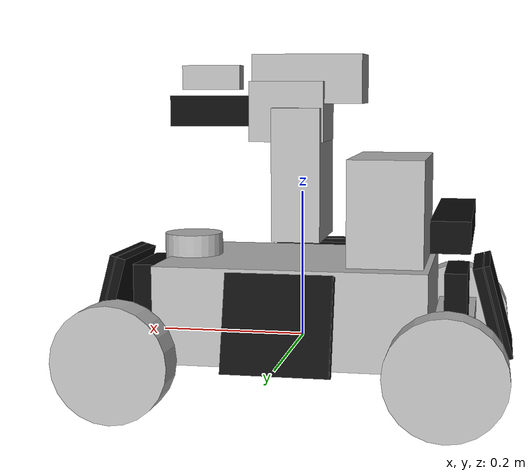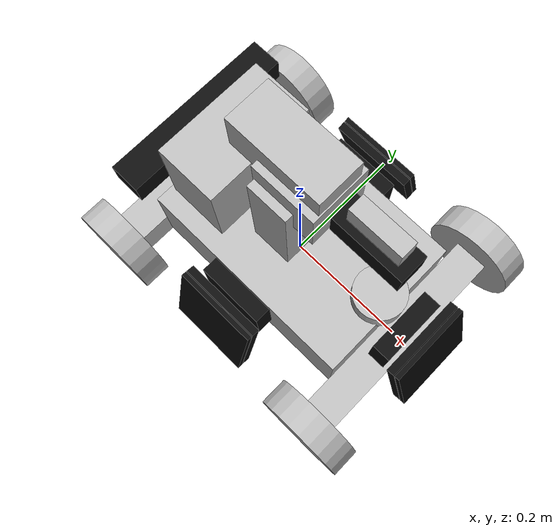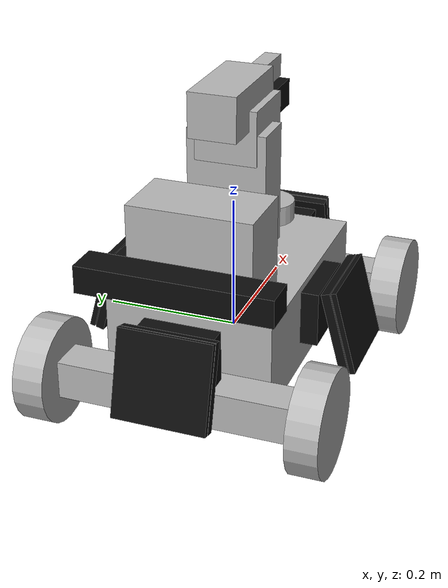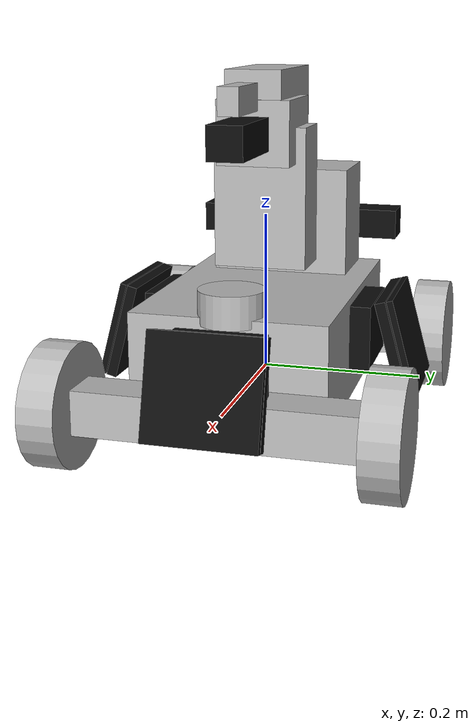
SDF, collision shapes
<?xml version="1.0" ?>
<!-- |    This document was autogenerated by xmacro4sdf from /home/jlcv/heavy/src/heavy_lob_shot_manager/resource/xmacro/simulation_robot.sdf.xmacro  | -->
<!-- |    EDITING THIS FILE BY HAND IS NOT RECOMMENDED                                                                                        | -->
<sdf version="1.7">
	<!--include defination-->
	<!--property defination-->
	<!-- 底盘距离水平地面的高度 -->
	<!-- gimbal_yaw 相对于底盘的 z 轴安装偏移 -->
	<!-- gimbal_pitch 相对于 gimbal_yaw 的高度差 -->
	<!--simulation_robot model-->
	<model name="simulation_robot">
		<pose>0 0 0 0 0 0</pose>
		<self_collide>false</self_collide>
		<link name="base_footprint"/>
		<joint name="base_to_chassis" type="fixed">
			<pose>0 0 0.063 0 0 0</pose>
			<parent>base_footprint</parent>
			<child>chassis</child>
		</joint>
		<!--chassis-->
		<link name="chassis">
			<inertial>
				<pose>0 0 0.055 0 0 0</pose>
				<mass>15.0</mass>
				<inertia>
					<ixx>0.093125</ixx>
					<ixy>0</ixy>
					<ixz>0</ixz>
					<iyy>0.18312499999999998</iyy>
					<iyz>0</iyz>
					<izz>0.23399999999999999</izz>
				</inertia>
			</inertial>
			<visual name="chassis_visual">
				<geometry>
					<mesh>
						<uri>model://rmua19_standard_robot/meshes/chassis_base.dae</uri>
					</mesh>
				</geometry>
			</visual>
			<collision name="chassis_base_collision">
				<pose>0 0 0.045 0 0 0</pose>
				<geometry>
					<box>
						<size>0.36 0.24 0.13</size>
					</box>
				</geometry>
			</collision>
			<collision name="chassis_projectile_container_collision">
				<pose>-0.122 0 0.177 0 0 0</pose>
				<geometry>
					<box>
						<size>0.1 0.18 0.146</size>
					</box>
				</geometry>
			</collision>
			<collision name="chassis_fornt_wheel_holder_collision">
				<pose>0.208 0 0 0 0 0</pose>
				<geometry>
					<box>
						<size>0.055 0.367 0.055</size>
					</box>
				</geometry>
			</collision>
			<collision name="chassis_rear_wheel_holder_collision">
				<pose>-0.208 0 0 0 0 0</pose>
				<geometry>
					<box>
						<size>0.055 0.367 0.055</size>
					</box>
				</geometry>
			</collision>
			<sensor name="chassis_imu" type="imu">
				<always_on>1</always_on>
				<update_rate>200</update_rate>
			</sensor>
		</link>
		<!--front_left wheel link and joint-->
		<joint name="front_left_wheel_joint" type="revolute">
			<pose relative_to="chassis">0.207 0.194 0 0 0 0</pose>
			<parent>chassis</parent>
			<child>front_left_wheel</child>
			<axis>
				<xyz>0 1 0</xyz>
				<limit>
					<lower>-1.79769e+308</lower>
					<upper>1.79769e+308</upper>
					<effort>1e+10</effort>
					<velocity>1e+10</velocity>
				</limit>
			</axis>
		</joint>
		<link name="front_left_wheel">
			<pose relative_to="front_left_wheel_joint">0 0 0 0 0 0</pose>
			<inertial>
				<pose>0 0 0 1.5707 0 0</pose>
				<mass>0.4</mass>
				<inertia>
					<ixx>0.0006426653333333334</ixx>
					<ixy>0</ixy>
					<ixz>0</ixz>
					<iyy>0.0006426653333333334</iyy>
					<iyz>0</iyz>
					<izz>0.0011491280000000001</izz>
				</inertia>
			</inertial>
			<visual name="front_left_wheel_visual">
				<geometry>
					<mesh>
						<uri>model://rmua19_standard_robot/meshes/wheel_left.dae</uri>
					</mesh>
				</geometry>
			</visual>
			<collision name="front_left_wheel_collision">
				<pose>0 0 0 1.5707 0 0</pose>
				<geometry>
					<cylinder>
						<radius>0.0758</radius>
						<length>0.0452</length>
					</cylinder>
				</geometry>
				<surface>
					<friction>
						<ode>
							<mu>0.2</mu>
							<mu2>0.2</mu2>
						</ode>
					</friction>
				</surface>
			</collision>
		</link>
		<!--front_right wheel link and joint-->
		<joint name="front_right_wheel_joint" type="revolute">
			<pose relative_to="chassis">0.207 -0.194 0 0 0 0</pose>
			<parent>chassis</parent>
			<child>front_right_wheel</child>
			<axis>
				<xyz>0 1 0</xyz>
				<limit>
					<lower>-1.79769e+308</lower>
					<upper>1.79769e+308</upper>
					<effort>1e+10</effort>
					<velocity>1e+10</velocity>
				</limit>
			</axis>
		</joint>
		<link name="front_right_wheel">
			<pose relative_to="front_right_wheel_joint">0 0 0 0 0 0</pose>
			<inertial>
				<pose>0 0 0 1.5707 0 0</pose>
				<mass>0.4</mass>
				<inertia>
					<ixx>0.0006426653333333334</ixx>
					<ixy>0</ixy>
					<ixz>0</ixz>
					<iyy>0.0006426653333333334</iyy>
					<iyz>0</iyz>
					<izz>0.0011491280000000001</izz>
				</inertia>
			</inertial>
			<visual name="front_right_wheel_visual">
				<geometry>
					<mesh>
						<uri>model://rmua19_standard_robot/meshes/wheel_right.dae</uri>
					</mesh>
				</geometry>
			</visual>
			<collision name="front_right_wheel_collision">
				<pose>0 0 0 1.5707 0 0</pose>
				<geometry>
					<cylinder>
						<radius>0.0758</radius>
						<length>0.0452</length>
					</cylinder>
				</geometry>
				<surface>
					<friction>
						<ode>
							<mu>0.2</mu>
							<mu2>0.2</mu2>
						</ode>
					</friction>
				</surface>
			</collision>
		</link>
		<!--rear_left wheel link and joint-->
		<joint name="rear_left_wheel_joint" type="revolute">
			<pose relative_to="chassis">-0.207 0.194 0 0 0 0</pose>
			<parent>chassis</parent>
			<child>rear_left_wheel</child>
			<axis>
				<xyz>0 1 0</xyz>
				<limit>
					<lower>-1.79769e+308</lower>
					<upper>1.79769e+308</upper>
					<effort>1e+10</effort>
					<velocity>1e+10</velocity>
				</limit>
			</axis>
		</joint>
		<link name="rear_left_wheel">
			<pose relative_to="rear_left_wheel_joint">0 0 0 0 0 0</pose>
			<inertial>
				<pose>0 0 0 1.5707 0 0</pose>
				<mass>0.4</mass>
				<inertia>
					<ixx>0.0006426653333333334</ixx>
					<ixy>0</ixy>
					<ixz>0</ixz>
					<iyy>0.0006426653333333334</iyy>
					<iyz>0</iyz>
					<izz>0.0011491280000000001</izz>
				</inertia>
			</inertial>
			<visual name="rear_left_wheel_visual">
				<geometry>
					<mesh>
						<uri>model://rmua19_standard_robot/meshes/wheel_right.dae</uri>
					</mesh>
				</geometry>
			</visual>
			<collision name="rear_left_wheel_collision">
				<pose>0 0 0 1.5707 0 0</pose>
				<geometry>
					<cylinder>
						<radius>0.0758</radius>
						<length>0.0452</length>
					</cylinder>
				</geometry>
				<surface>
					<friction>
						<ode>
							<mu>0.2</mu>
							<mu2>0.2</mu2>
						</ode>
					</friction>
				</surface>
			</collision>
		</link>
		<!--rear_right wheel link and joint-->
		<joint name="rear_right_wheel_joint" type="revolute">
			<pose relative_to="chassis">-0.207 -0.194 0 0 0 0</pose>
			<parent>chassis</parent>
			<child>rear_right_wheel</child>
			<axis>
				<xyz>0 1 0</xyz>
				<limit>
					<lower>-1.79769e+308</lower>
					<upper>1.79769e+308</upper>
					<effort>1e+10</effort>
					<velocity>1e+10</velocity>
				</limit>
			</axis>
		</joint>
		<link name="rear_right_wheel">
			<pose relative_to="rear_right_wheel_joint">0 0 0 0 0 0</pose>
			<inertial>
				<pose>0 0 0 1.5707 0 0</pose>
				<mass>0.4</mass>
				<inertia>
					<ixx>0.0006426653333333334</ixx>
					<ixy>0</ixy>
					<ixz>0</ixz>
					<iyy>0.0006426653333333334</iyy>
					<iyz>0</iyz>
					<izz>0.0011491280000000001</izz>
				</inertia>
			</inertial>
			<visual name="rear_right_wheel_visual">
				<geometry>
					<mesh>
						<uri>model://rmua19_standard_robot/meshes/wheel_left.dae</uri>
					</mesh>
				</geometry>
			</visual>
			<collision name="rear_right_wheel_collision">
				<pose>0 0 0 1.5707 0 0</pose>
				<geometry>
					<cylinder>
						<radius>0.0758</radius>
						<length>0.0452</length>
					</cylinder>
				</geometry>
				<surface>
					<friction>
						<ode>
							<mu>0.2</mu>
							<mu2>0.2</mu2>
						</ode>
					</friction>
				</surface>
			</collision>
		</link>
		<joint name="gimbal_yaw_odom_joint" type="revolute">
			<pose relative_to="chassis">0 0 0.1376 0 0 0</pose>
			<parent>chassis</parent>
			<child>gimbal_yaw_odom</child>
			<axis>
				<xyz>0 0 1</xyz>
				<limit>
					<effort>100</effort>
					<velocity>50</velocity>
					<lower>-1.79769e+308</lower>
					<upper>1.79769e+308</upper>
				</limit>
			</axis>
		</joint>
		<link name="gimbal_yaw_odom">
			<pose relative_to="gimbal_yaw_odom_joint">0 0 0 0 0 0</pose>
		</link>
		<joint name="gimbal_pitch_odom_joint" type="fixed">
			<pose relative_to="gimbal_yaw_odom">0 0 0.172 0 0 0</pose>
			<parent>gimbal_yaw_odom</parent>
			<child>gimbal_pitch_odom</child>
			<axis>
				<xyz>0 1 0</xyz>
				<limit>
					<effort>100</effort>
					<velocity>50</velocity>
					<lower>-0.785</lower>
					<upper>0.5652</upper>
				</limit>
			</axis>
		</joint>
		<link name="gimbal_pitch_odom">
			<pose relative_to="gimbal_pitch_odom_joint">0 0 0 0 0 0</pose>
		</link>
		<!--gimbal yaw module-->
		<joint name="gimbal_yaw_joint" type="revolute">
			<pose relative_to="gimbal_pitch_odom">0 0 -0.172 0 0 0</pose>
			<parent>gimbal_pitch_odom</parent>
			<child>gimbal_yaw</child>
			<axis>
				<xyz>0 0 1</xyz>
				<limit>
					<effort>100</effort>
					<velocity>50</velocity>
					<lower>-1.79769e+308</lower>
					<upper>1.79769e+308</upper>
				</limit>
			</axis>
		</joint>
		<link name="gimbal_yaw">
			<pose relative_to="gimbal_yaw_joint">0 0 0 0 0 0</pose>
			<inertial>
				<pose>0 0 0.06 0 0 0</pose>
				<mass>1.0</mass>
				<inertia>
					<ixx>0.003033333333333334</ixx>
					<ixy>0</ixy>
					<ixz>0</ixz>
					<iyy>0.003033333333333334</iyy>
					<iyz>0</iyz>
					<izz>0.0012500000000000002</izz>
				</inertia>
			</inertial>
			<visual name="visual">
				<geometry>
					<mesh>
						<uri>model://rmua19_standard_robot/meshes/gimbal_yaw.dae</uri>
					</mesh>
				</geometry>
			</visual>
			<collision name="collision">
				<pose>0 0 0.0885 0 0 0</pose>
				<geometry>
					<box>
						<size>0.065 0.117 0.177</size>
					</box>
				</geometry>
			</collision>
		</link>
		<!--gimbal pitch module-->
		<joint name="gimbal_pitch_joint" type="revolute">
			<pose relative_to="gimbal_yaw">0 0 0.172 0 0 0</pose>
			<parent>gimbal_yaw</parent>
			<child>gimbal_pitch</child>
			<axis>
				<xyz>0 1 0</xyz>
				<limit>
					<effort>100</effort>
					<lower>-1.60</lower>
					<upper>0.20</upper>
					<velocity>50</velocity>
				</limit>
			</axis>
		</joint>
		<link name="gimbal_pitch">
			<pose relative_to="gimbal_pitch_joint">0 0 0 0 0 0</pose>
			<inertial>
				<pose>0.02 0 0 0 0 0</pose>
				<mass>0.5</mass>
				<inertia>
					<ixx>0.0007541666666666668</ixx>
					<ixy>0</ixy>
					<ixz>0</ixz>
					<iyy>0.0030208333333333337</iyy>
					<iyz>0</iyz>
					<izz>0.0029416666666666666</izz>
				</inertia>
			</inertial>
			<visual name="visual">
				<geometry>
					<mesh>
						<uri>model://rmua19_standard_robot/meshes/gimbal_pitch.dae</uri>
					</mesh>
				</geometry>
			</visual>
			<collision name="collision_main">
				<pose>0.015 0 0 0 0 0</pose>
				<geometry>
					<box>
						<size>0.1 0.0915 0.08</size>
					</box>
				</geometry>
			</collision>
			<collision name="collision_box">
				<pose>-0.011 0 0.043 0 0 0</pose>
				<geometry>
					<box>
						<size>0.14801 0.07 0.065</size>
					</box>
				</geometry>
			</collision>
			<sensor name="gimbal_imu" type="imu">
				<always_on>1</always_on>
				<update_rate>200</update_rate>
			</sensor>
		</link>
		<!--for referee system -->
		<!--front armors -->
		<joint name="armor_support_frame_0_joint" type="fixed">
			<pose relative_to="chassis">0.197 0 0.061 0 0 0</pose>
			<parent>chassis</parent>
			<child>armor_support_frame_0</child>
		</joint>
		<link name="armor_support_frame_0">
			<pose relative_to="armor_support_frame_0_joint">0 0 0 0 0 0</pose>
			<inertial>
				<pose>0.035 0 0 0 0 0</pose>
				<mass>0.1</mass>
				<inertia>
					<ixx>0.00023080833333333334</ixx>
					<ixy>0</ixy>
					<ixz>0</ixz>
					<iyy>0.00017014166666666668</iyy>
					<iyz>0</iyz>
					<izz>0.00014468333333333334</izz>
				</inertia>
			</inertial>
			<visual name="visual">
				<geometry>
					<mesh>
						<uri>model://rm21_armor_module/meshes/armor_support_frame.stl</uri>
					</mesh>
				</geometry>
				<material>
					<ambient>0.1 0.1 0.1</ambient>
					<diffuse>0.05 0.05 0.05</diffuse>
					<specular>0.6 0.6 0.6</specular>
				</material>
			</visual>
			<collision name="collision">
				<pose>0.015 0 0 0 0 0</pose>
				<geometry>
					<box>
						<size>0.03 0.11 0.08</size>
					</box>
				</geometry>
			</collision>
		</link>
		<joint name="armor_0_joint" type="fixed">
			<pose relative_to="armor_support_frame_0">0.075 0 -0.071 0 -0.262 0</pose>
			<parent>armor_support_frame_0</parent>
			<child>armor_0</child>
		</joint>
		<link name="armor_0">
			<pose relative_to="armor_0_joint">0 0 0 0 0 0</pose>
			<inertial>
				<pose>0 0 0.0625 0 0 0</pose>
				<mass>0.1</mass>
				<inertia>
					<ixx>0.0003065083333333333</ixx>
					<ixy>0</ixy>
					<ixz>0</ixz>
					<iyy>0.0001421774166666667</iyy>
					<iyz>0</iyz>
					<izz>0.0001670190833333333</izz>
				</inertia>
			</inertial>
			<visual name="visual">
				<geometry>
					<mesh>
						<uri>model://rm21_armor_module/meshes/small_armor.dae</uri>
					</mesh>
				</geometry>
				<material>
					<ambient>0.1 0.1 0.1</ambient>
					<diffuse>0.05 0.05 0.05</diffuse>
					<specular>0.6 0.6 0.6</specular>
				</material>
			</visual>
			<visual name="target_visual">
				<geometry>
					<mesh>
						<uri>model://rm21_armor_module/meshes/small_armor_target.dae</uri>
					</mesh>
				</geometry>
				<material>
					<ambient>0.1 0.1 0.1</ambient>
					<diffuse>0.05 0.05 0.05</diffuse>
					<specular>0.6 0.6 0.6</specular>
				</material>
			</visual>
			<visual name="light_bar_visual">
				<geometry>
					<mesh>
						<uri>model://rm21_armor_module/meshes/small_armor_light_bar.dae</uri>
					</mesh>
				</geometry>
				<material>
					<ambient>1.0 1.0 1.0</ambient>
					<diffuse>1.0 1.0 1.0</diffuse>
					<emissive>1.0 1.0 1.0</emissive>
					<specular>0.5 0.5 0.5</specular>
				</material>
			</visual>
			<visual name="sticker_visual">
				<pose>0.014 0 0.0625 1.5708 0 1.5708</pose>
				<geometry>
					<plane>
						<normal>0 0 1</normal>
						<size>0.130 0.120</size>
					</plane>
				</geometry>
				<material>
					<ambient>1.0 1.0 1.0</ambient>
					<diffuse>1.0 1.0 1.0</diffuse>
					<specular>0.1 0.1 0.1</specular>
					<pbr>
						<metal>
							<albedo_map>model://rm21_armor_module/materials/textures/small_num3.png</albedo_map>
						</metal>
					</pbr>
				</material>
			</visual>
			<collision name="collision">
				<pose>0 0 0.0625 0 0 0</pose>
				<geometry>
					<box>
						<size>0.013 0.135 0.125</size>
					</box>
				</geometry>
			</collision>
			<collision name="target_collision">
				<pose>0.012 0 0.0625 0 0 0</pose>
				<geometry>
					<box>
						<size>0.008 0.135 0.125</size>
					</box>
				</geometry>
			</collision>
		</link>
		<!--left armors -->
		<joint name="armor_support_frame_1_joint" type="fixed">
			<pose relative_to="chassis">0 0.116 0.061 0 0 1.5708</pose>
			<parent>chassis</parent>
			<child>armor_support_frame_1</child>
		</joint>
		<link name="armor_support_frame_1">
			<pose relative_to="armor_support_frame_1_joint">0 0 0 0 0 0</pose>
			<inertial>
				<pose>0.035 0 0 0 0 0</pose>
				<mass>0.1</mass>
				<inertia>
					<ixx>0.00023080833333333334</ixx>
					<ixy>0</ixy>
					<ixz>0</ixz>
					<iyy>0.00017014166666666668</iyy>
					<iyz>0</iyz>
					<izz>0.00014468333333333334</izz>
				</inertia>
			</inertial>
			<visual name="visual">
				<geometry>
					<mesh>
						<uri>model://rm21_armor_module/meshes/armor_support_frame.stl</uri>
					</mesh>
				</geometry>
				<material>
					<ambient>0.1 0.1 0.1</ambient>
					<diffuse>0.05 0.05 0.05</diffuse>
					<specular>0.6 0.6 0.6</specular>
				</material>
			</visual>
			<collision name="collision">
				<pose>0.015 0 0 0 0 0</pose>
				<geometry>
					<box>
						<size>0.03 0.11 0.08</size>
					</box>
				</geometry>
			</collision>
		</link>
		<joint name="armor_1_joint" type="fixed">
			<pose relative_to="armor_support_frame_1">0.075 0 -0.071 0 -0.262 0</pose>
			<parent>armor_support_frame_1</parent>
			<child>armor_1</child>
		</joint>
		<link name="armor_1">
			<pose relative_to="armor_1_joint">0 0 0 0 0 0</pose>
			<inertial>
				<pose>0 0 0.0625 0 0 0</pose>
				<mass>0.1</mass>
				<inertia>
					<ixx>0.0003065083333333333</ixx>
					<ixy>0</ixy>
					<ixz>0</ixz>
					<iyy>0.0001421774166666667</iyy>
					<iyz>0</iyz>
					<izz>0.0001670190833333333</izz>
				</inertia>
			</inertial>
			<visual name="visual">
				<geometry>
					<mesh>
						<uri>model://rm21_armor_module/meshes/small_armor.dae</uri>
					</mesh>
				</geometry>
				<material>
					<ambient>0.1 0.1 0.1</ambient>
					<diffuse>0.05 0.05 0.05</diffuse>
					<specular>0.6 0.6 0.6</specular>
				</material>
			</visual>
			<visual name="target_visual">
				<geometry>
					<mesh>
						<uri>model://rm21_armor_module/meshes/small_armor_target.dae</uri>
					</mesh>
				</geometry>
				<material>
					<ambient>0.1 0.1 0.1</ambient>
					<diffuse>0.05 0.05 0.05</diffuse>
					<specular>0.6 0.6 0.6</specular>
				</material>
			</visual>
			<visual name="light_bar_visual">
				<geometry>
					<mesh>
						<uri>model://rm21_armor_module/meshes/small_armor_light_bar.dae</uri>
					</mesh>
				</geometry>
				<material>
					<ambient>1.0 1.0 1.0</ambient>
					<diffuse>1.0 1.0 1.0</diffuse>
					<emissive>1.0 1.0 1.0</emissive>
					<specular>0.5 0.5 0.5</specular>
				</material>
			</visual>
			<visual name="sticker_visual">
				<pose>0.014 0 0.0625 1.5708 0 1.5708</pose>
				<geometry>
					<plane>
						<normal>0 0 1</normal>
						<size>0.130 0.120</size>
					</plane>
				</geometry>
				<material>
					<ambient>1.0 1.0 1.0</ambient>
					<diffuse>1.0 1.0 1.0</diffuse>
					<specular>0.1 0.1 0.1</specular>
					<pbr>
						<metal>
							<albedo_map>model://rm21_armor_module/materials/textures/small_num3.png</albedo_map>
						</metal>
					</pbr>
				</material>
			</visual>
			<collision name="collision">
				<pose>0 0 0.0625 0 0 0</pose>
				<geometry>
					<box>
						<size>0.013 0.135 0.125</size>
					</box>
				</geometry>
			</collision>
			<collision name="target_collision">
				<pose>0.012 0 0.0625 0 0 0</pose>
				<geometry>
					<box>
						<size>0.008 0.135 0.125</size>
					</box>
				</geometry>
			</collision>
		</link>
		<!--rear armors -->
		<joint name="armor_support_frame_2_joint" type="fixed">
			<pose relative_to="chassis">-0.197 0 0.061 0 0 3.14</pose>
			<parent>chassis</parent>
			<child>armor_support_frame_2</child>
		</joint>
		<link name="armor_support_frame_2">
			<pose relative_to="armor_support_frame_2_joint">0 0 0 0 0 0</pose>
			<inertial>
				<pose>0.035 0 0 0 0 0</pose>
				<mass>0.1</mass>
				<inertia>
					<ixx>0.00023080833333333334</ixx>
					<ixy>0</ixy>
					<ixz>0</ixz>
					<iyy>0.00017014166666666668</iyy>
					<iyz>0</iyz>
					<izz>0.00014468333333333334</izz>
				</inertia>
			</inertial>
			<visual name="visual">
				<geometry>
					<mesh>
						<uri>model://rm21_armor_module/meshes/armor_support_frame.stl</uri>
					</mesh>
				</geometry>
				<material>
					<ambient>0.1 0.1 0.1</ambient>
					<diffuse>0.05 0.05 0.05</diffuse>
					<specular>0.6 0.6 0.6</specular>
				</material>
			</visual>
			<collision name="collision">
				<pose>0.015 0 0 0 0 0</pose>
				<geometry>
					<box>
						<size>0.03 0.11 0.08</size>
					</box>
				</geometry>
			</collision>
		</link>
		<joint name="armor_2_joint" type="fixed">
			<pose relative_to="armor_support_frame_2">0.075 0 -0.071 0 -0.262 0</pose>
			<parent>armor_support_frame_2</parent>
			<child>armor_2</child>
		</joint>
		<link name="armor_2">
			<pose relative_to="armor_2_joint">0 0 0 0 0 0</pose>
			<inertial>
				<pose>0 0 0.0625 0 0 0</pose>
				<mass>0.1</mass>
				<inertia>
					<ixx>0.0003065083333333333</ixx>
					<ixy>0</ixy>
					<ixz>0</ixz>
					<iyy>0.0001421774166666667</iyy>
					<iyz>0</iyz>
					<izz>0.0001670190833333333</izz>
				</inertia>
			</inertial>
			<visual name="visual">
				<geometry>
					<mesh>
						<uri>model://rm21_armor_module/meshes/small_armor.dae</uri>
					</mesh>
				</geometry>
				<material>
					<ambient>0.1 0.1 0.1</ambient>
					<diffuse>0.05 0.05 0.05</diffuse>
					<specular>0.6 0.6 0.6</specular>
				</material>
			</visual>
			<visual name="target_visual">
				<geometry>
					<mesh>
						<uri>model://rm21_armor_module/meshes/small_armor_target.dae</uri>
					</mesh>
				</geometry>
				<material>
					<ambient>0.1 0.1 0.1</ambient>
					<diffuse>0.05 0.05 0.05</diffuse>
					<specular>0.6 0.6 0.6</specular>
				</material>
			</visual>
			<visual name="light_bar_visual">
				<geometry>
					<mesh>
						<uri>model://rm21_armor_module/meshes/small_armor_light_bar.dae</uri>
					</mesh>
				</geometry>
				<material>
					<ambient>1.0 1.0 1.0</ambient>
					<diffuse>1.0 1.0 1.0</diffuse>
					<emissive>1.0 1.0 1.0</emissive>
					<specular>0.5 0.5 0.5</specular>
				</material>
			</visual>
			<visual name="sticker_visual">
				<pose>0.014 0 0.0625 1.5708 0 1.5708</pose>
				<geometry>
					<plane>
						<normal>0 0 1</normal>
						<size>0.130 0.120</size>
					</plane>
				</geometry>
				<material>
					<ambient>1.0 1.0 1.0</ambient>
					<diffuse>1.0 1.0 1.0</diffuse>
					<specular>0.1 0.1 0.1</specular>
					<pbr>
						<metal>
							<albedo_map>model://rm21_armor_module/materials/textures/small_num3.png</albedo_map>
						</metal>
					</pbr>
				</material>
			</visual>
			<collision name="collision">
				<pose>0 0 0.0625 0 0 0</pose>
				<geometry>
					<box>
						<size>0.013 0.135 0.125</size>
					</box>
				</geometry>
			</collision>
			<collision name="target_collision">
				<pose>0.012 0 0.0625 0 0 0</pose>
				<geometry>
					<box>
						<size>0.008 0.135 0.125</size>
					</box>
				</geometry>
			</collision>
		</link>
		<!--right armors -->
		<joint name="armor_support_frame_3_joint" type="fixed">
			<pose relative_to="chassis">0 -0.116 0.061 0 0 -1.5708</pose>
			<parent>chassis</parent>
			<child>armor_support_frame_3</child>
		</joint>
		<link name="armor_support_frame_3">
			<pose relative_to="armor_support_frame_3_joint">0 0 0 0 0 0</pose>
			<inertial>
				<pose>0.035 0 0 0 0 0</pose>
				<mass>0.1</mass>
				<inertia>
					<ixx>0.00023080833333333334</ixx>
					<ixy>0</ixy>
					<ixz>0</ixz>
					<iyy>0.00017014166666666668</iyy>
					<iyz>0</iyz>
					<izz>0.00014468333333333334</izz>
				</inertia>
			</inertial>
			<visual name="visual">
				<geometry>
					<mesh>
						<uri>model://rm21_armor_module/meshes/armor_support_frame.stl</uri>
					</mesh>
				</geometry>
				<material>
					<ambient>0.1 0.1 0.1</ambient>
					<diffuse>0.05 0.05 0.05</diffuse>
					<specular>0.6 0.6 0.6</specular>
				</material>
			</visual>
			<collision name="collision">
				<pose>0.015 0 0 0 0 0</pose>
				<geometry>
					<box>
						<size>0.03 0.11 0.08</size>
					</box>
				</geometry>
			</collision>
		</link>
		<joint name="armor_3_joint" type="fixed">
			<pose relative_to="armor_support_frame_3">0.075 0 -0.071 0 -0.262 0</pose>
			<parent>armor_support_frame_3</parent>
			<child>armor_3</child>
		</joint>
		<link name="armor_3">
			<pose relative_to="armor_3_joint">0 0 0 0 0 0</pose>
			<inertial>
				<pose>0 0 0.0625 0 0 0</pose>
				<mass>0.1</mass>
				<inertia>
					<ixx>0.0003065083333333333</ixx>
					<ixy>0</ixy>
					<ixz>0</ixz>
					<iyy>0.0001421774166666667</iyy>
					<iyz>0</iyz>
					<izz>0.0001670190833333333</izz>
				</inertia>
			</inertial>
			<visual name="visual">
				<geometry>
					<mesh>
						<uri>model://rm21_armor_module/meshes/small_armor.dae</uri>
					</mesh>
				</geometry>
				<material>
					<ambient>0.1 0.1 0.1</ambient>
					<diffuse>0.05 0.05 0.05</diffuse>
					<specular>0.6 0.6 0.6</specular>
				</material>
			</visual>
			<visual name="target_visual">
				<geometry>
					<mesh>
						<uri>model://rm21_armor_module/meshes/small_armor_target.dae</uri>
					</mesh>
				</geometry>
				<material>
					<ambient>0.1 0.1 0.1</ambient>
					<diffuse>0.05 0.05 0.05</diffuse>
					<specular>0.6 0.6 0.6</specular>
				</material>
			</visual>
			<visual name="light_bar_visual">
				<geometry>
					<mesh>
						<uri>model://rm21_armor_module/meshes/small_armor_light_bar.dae</uri>
					</mesh>
				</geometry>
				<material>
					<ambient>1.0 1.0 1.0</ambient>
					<diffuse>1.0 1.0 1.0</diffuse>
					<emissive>1.0 1.0 1.0</emissive>
					<specular>0.5 0.5 0.5</specular>
				</material>
			</visual>
			<visual name="sticker_visual">
				<pose>0.014 0 0.0625 1.5708 0 1.5708</pose>
				<geometry>
					<plane>
						<normal>0 0 1</normal>
						<size>0.130 0.120</size>
					</plane>
				</geometry>
				<material>
					<ambient>1.0 1.0 1.0</ambient>
					<diffuse>1.0 1.0 1.0</diffuse>
					<specular>0.1 0.1 0.1</specular>
					<pbr>
						<metal>
							<albedo_map>model://rm21_armor_module/materials/textures/small_num3.png</albedo_map>
						</metal>
					</pbr>
				</material>
			</visual>
			<collision name="collision">
				<pose>0 0 0.0625 0 0 0</pose>
				<geometry>
					<box>
						<size>0.013 0.135 0.125</size>
					</box>
				</geometry>
			</collision>
			<collision name="target_collision">
				<pose>0.012 0 0.0625 0 0 0</pose>
				<geometry>
					<box>
						<size>0.008 0.135 0.125</size>
					</box>
				</geometry>
			</collision>
		</link>
		<!--light_indicator-->
		<joint name="light_indicator_joint" type="fixed">
			<pose relative_to="chassis">-0.207 0 0.1 0 0 0</pose>
			<parent>chassis</parent>
			<child>light_indicator</child>
		</joint>
		<link name="light_indicator">
			<pose relative_to="light_indicator_joint">0 0 0 0 0 0</pose>
			<inertial>
				<pose>0 0 0.04 0 0 0</pose>
				<mass>0.1</mass>
				<inertia>
					<ixx>0.0006666666666666669</ixx>
					<ixy>0</ixy>
					<ixz>0</ixz>
					<iyy>3.416666666666667e-05</iyy>
					<iyz>0</iyz>
					<izz>0.0006741666666666668</izz>
				</inertia>
			</inertial>
			<visual name="light_indicator_holder_visual">
				<geometry>
					<mesh>
						<uri>model://rm21_light_indicator_module/meshes/light_indicator_holder.dae</uri>
					</mesh>
				</geometry>
				<material>
					<ambient>0.1 0.1 0.1</ambient>
					<diffuse>0.05 0.05 0.05</diffuse>
					<specular>0.6 0.6 0.6</specular>
				</material>
			</visual>
			<visual name="light_bar_visual">
				<geometry>
					<mesh>
						<uri>model://rm21_light_indicator_module/meshes/light_indicator_bar.dae</uri>
					</mesh>
				</geometry>
				<material>
					<ambient>1.0 1.0 1.0</ambient>
					<diffuse>1.0 1.0 1.0</diffuse>
					<specular>0.5 0.5 0.5</specular>
				</material>
			</visual>
			<collision name="light_bar_collision">
				<pose>0 0 0.06 0 0 0</pose>
				<geometry>
					<box>
						<size>0.05 0.28 0.04</size>
					</box>
				</geometry>
			</collision>
		</link>
		<!--speed_monitor_17mm-->
		<joint name="speed_monitor_joint" type="fixed">
			<pose relative_to="gimbal_pitch">0.07 0 0 0 0 0</pose>
			<parent>gimbal_pitch</parent>
			<child>speed_monitor</child>
		</joint>
		<link name="speed_monitor">
			<pose relative_to="speed_monitor_joint">0 0 0 0 0 0</pose>
			<inertial>
				<pose>0.055 0 0 0 0 0</pose>
				<mass>0.1</mass>
				<inertia>
					<ixx>2.941666666666667e-05</ixx>
					<ixy>0</ixy>
					<ixz>0</ixz>
					<iyy>0.00011484166666666668</iyy>
					<iyz>0</iyz>
					<izz>0.00011624166666666668</izz>
				</inertia>
			</inertial>
			<visual name="visual">
				<geometry>
					<mesh>
						<uri>model://rm21_speed_monitor_module/meshes/speed_monitor_17mm.dae</uri>
					</mesh>
				</geometry>
				<material>
					<ambient>0.1 0.1 0.1</ambient>
					<diffuse>0.05 0.05 0.05</diffuse>
					<specular>0.6 0.6 0.6</specular>
				</material>
			</visual>
			<visual name="light_bar_visual">
				<geometry>
					<mesh>
						<uri>model://rm21_speed_monitor_module/meshes/speed_monitor_17mm_light_bar.dae</uri>
					</mesh>
				</geometry>
				<material>
					<ambient>1.0 1.0 1.0</ambient>
					<diffuse>1.0 1.0 1.0</diffuse>
					<specular>0.5 0.5 0.5</specular>
				</material>
			</visual>
			<collision name="collision">
				<pose>0.055 0 0 0 0 0</pose>
				<geometry>
					<box>
						<size>0.11 0.043 0.041</size>
					</box>
				</geometry>
			</collision>
		</link>
		<!--rplidar a2-->
		<joint name="front_rplidar_a2_joint" type="fixed">
			<pose relative_to="chassis">0.155 0 0.1 0 0 0</pose>
			<parent>chassis</parent>
			<child>front_rplidar_a2</child>
		</joint>
		<link name="front_rplidar_a2">
			<pose relative_to="front_rplidar_a2_joint">0 0 0 0 0 0</pose>
			<inertial>
				<pose>0 0 0.02 0 0 0</pose>
				<mass>0.005</mass>
				<inertia>
					<ixx>2.6666666666666664e-06</ixx>
					<ixy>0</ixy>
					<ixz>0</ixz>
					<iyy>2.6666666666666664e-06</iyy>
					<iyz>0</iyz>
					<izz>4.000000000000001e-06</izz>
				</inertia>
			</inertial>
			<visual name="visual">
				<geometry>
					<mesh>
						<uri>model://rplidar_a2/meshes/rplidar_a2.dae</uri>
					</mesh>
				</geometry>
			</visual>
			<collision name="collision">
				<pose>0 0 0.02 0 0 0</pose>
				<geometry>
					<cylinder>
						<radius>0.04</radius>
						<length>0.04</length>
					</cylinder>
				</geometry>
			</collision>
			<sensor name="front_rplidar_a2" type="gpu_lidar">
				<gz_frame_id>front_rplidar_a2</gz_frame_id>
				<pose>0 0 0.03 0 0 0</pose>
				<always_on>false</always_on>
				<visualize>false</visualize>
				<update_rate>10.0</update_rate>
				<ray>
					<scan>
						<horizontal>
							<samples>400.0</samples>
							<resolution>1.0</resolution>
							<min_angle>0</min_angle>
							<max_angle>6.28000020980835</max_angle>
						</horizontal>
					</scan>
					<range>
						<min>0.15</min>
						<max>12.0</max>
					</range>
				</ray>
				<noise>
					<type>gaussian</type>
					<mean>0.0</mean>
					<stddev>0.01</stddev>
				</noise>
			</sensor>
		</link>
		<!--livox-->
		<joint name="front_livox_joint" type="fixed">
			<pose relative_to="chassis">0.16 0.0 0.18 0.0 0.2617993877991494 0.0</pose>
			<parent>chassis</parent>
			<child>front_mid360</child>
		</joint>
		<link name="front_mid360">
			<pose relative_to="front_livox_joint">0.0 0.0 0.0 0 0 0</pose>
			<inertial>
				<pose>0 0 0.02 0 0 0</pose>
				<mass>0.005</mass>
				<inertia>
					<ixx>2.6666666666666664e-06</ixx>
					<ixy>0</ixy>
					<ixz>0</ixz>
					<iyy>2.6666666666666664e-06</iyy>
					<iyz>0</iyz>
					<izz>4.000000000000001e-06</izz>
				</inertia>
			</inertial>
			<visual name="visual">
				<pose>0.0 0.0 0.0 0 0 3.141592653589793</pose>
				<geometry>
					<mesh>
						<uri>model://mid360/meshes/mid360.dae</uri>
					</mesh>
				</geometry>
			</visual>
			<sensor name="front_mid360_imu" type="imu">
				<gz_frame_id>front_mid360</gz_frame_id>
				<always_on>1</always_on>
				<update_rate>200</update_rate>
				<visualize>false</visualize>
				<imu>
					<angular_velocity>
						<x>
							<noise type="gaussian">
								<mean>0</mean>
								<stddev>0.0012</stddev>
								<bias_mean>0.00005</bias_mean>
								<bias_stddev>0.00001</bias_stddev>
							</noise>
						</x>
						<y>
							<noise type="gaussian">
								<mean>0</mean>
								<stddev>0.0012</stddev>
								<bias_mean>0.00005</bias_mean>
								<bias_stddev>0.00001</bias_stddev>
							</noise>
						</y>
						<z>
							<noise type="gaussian">
								<mean>0</mean>
								<stddev>0.0012</stddev>
								<bias_mean>0.00005</bias_mean>
								<bias_stddev>0.00001</bias_stddev>
							</noise>
						</z>
					</angular_velocity>
					<linear_acceleration>
						<x>
							<noise type="gaussian">
								<mean>0</mean>
								<stddev>0.008</stddev>
								<bias_mean>0.0003</bias_mean>
								<bias_stddev>0.0001</bias_stddev>
							</noise>
						</x>
						<y>
							<noise type="gaussian">
								<mean>0</mean>
								<stddev>0.008</stddev>
								<bias_mean>0.0003</bias_mean>
								<bias_stddev>0.0001</bias_stddev>
							</noise>
						</y>
						<z>
							<noise type="gaussian">
								<mean>0</mean>
								<stddev>0.008</stddev>
								<bias_mean>0.0003</bias_mean>
								<bias_stddev>0.0001</bias_stddev>
							</noise>
						</z>
					</linear_acceleration>
				</imu>
			</sensor>
			<sensor name="front_mid360_lidar" type="gpu_lidar">
				<gz_frame_id>livox_frame</gz_frame_id>
				<pose>0 0 0.03 0 0 0</pose>
				<topic>livox/lidar</topic>
				<always_on>true</always_on>
				<visualize>false</visualize>
				<update_rate>10.0</update_rate>
				<ray>
					<scan>
						<horizontal>
							<samples>180</samples>
							<resolution>1.0</resolution>
							<min_angle>0</min_angle>
							<max_angle>6.2831852</max_angle>
						</horizontal>
						<vertical>
							<samples>16</samples>
							<min_angle>-0.12217304764</min_angle>
							<max_angle>0.90757121104</max_angle>
						</vertical>
					</scan>
					<range>
						<min>0.1</min>
						<max>40.0</max>
					</range>
				</ray>
				<noise>
					<type>gaussian</type>
					<mean>0.0</mean>
					<stddev>0.01</stddev>
				</noise>
			</sensor>
		</link>
		<!--industrial camera-->
		<joint name="front_industrial_camera_joint" type="fixed">
			<pose relative_to="gimbal_pitch">0.1 0 0.045 0 0 0</pose>
			<parent>gimbal_pitch</parent>
			<child>front_industrial_camera</child>
		</joint>
		<link name="front_industrial_camera">
			<pose relative_to="front_industrial_camera_joint">0 0 0 0 0 0</pose>
			<inertial>
				<pose>0.025 0 0 0 0 0</pose>
				<mass>0.05</mass>
				<inertia>
					<ixx>7.141666666666669e-06</ixx>
					<ixy>0</ixy>
					<ixz>0</ixz>
					<iyy>3.1204166666666675e-05</iyy>
					<iyz>0</iyz>
					<izz>2.9270833333333334e-05</izz>
				</inertia>
			</inertial>
			<visual name="visual">
				<geometry>
					<mesh>
						<uri>model://industrial_camera/meshes/industrial_camera.dae</uri>
					</mesh>
				</geometry>
			</visual>
			<collision name="collision">
				<pose>0.025 0 0 0 0 0</pose>
				<geometry>
					<box>
						<size>0.08 0.025 0.033</size>
					</box>
				</geometry>
			</collision>
			<sensor name="front_industrial_camera" type="camera">
				<gz_frame_id>camera_link</gz_frame_id>
				<topic>camera</topic>
				<always_on>1</always_on>
				<update_rate>15.0</update_rate>
				<visualize>false</visualize>
				<camera>
					<optical_frame_id>front_industrial_camera_optical_frame</optical_frame_id>
					<horizontal_fov>1.0</horizontal_fov>
					<image>
						<width>640</width>
						<height>480</height>
					</image>
					<clip>
						<near>0.1</near>
						<far>100</far>
					</clip>
				</camera>
			</sensor>
		</link>
		<joint name="front_industrial_camera_optical_joint" type="fixed">
			<pose relative_to="front_industrial_camera">0 0 0 -1.5707963267948966 0 -1.5707963267948966</pose>
			<parent>front_industrial_camera</parent>
			<child>front_industrial_camera_optical_frame</child>
		</joint>
		<link name="front_industrial_camera_optical_frame">
			<pose relative_to="front_industrial_camera_optical_joint">0 0 0 0 0 0</pose>
		</link>
		<!-- 本队接口别名：manager / gt_tf 认 base_link、muzzle。枪口相对 speed_monitor 抄 ITL ProjectileShooter offset -->
		<joint name="chassis_to_base_link" type="fixed">
			<parent>chassis</parent>
			<child>base_link</child>
			<pose>0 0 0 0 0 0</pose>
		</joint>
		<link name="base_link"/>
		<joint name="speed_monitor_to_muzzle" type="fixed">
			<parent>speed_monitor</parent>
			<child>muzzle</child>
			<pose>0.15 0 0 0 0 0</pose>
		</joint>
		<link name="muzzle"/>
		<!--plugins-->
		<!-- Fortress 自定义 LightBarController / MecanumDrive2 / ProjectileShooter 不搬；换成 Harmonic 官方系统，关节名照抄 PolarBear。 -->
		<plugin filename="gz-sim-joint-state-publisher-system" name="gz::sim::systems::JointStatePublisher">
		</plugin>
		<plugin filename="gz-sim-mecanum-drive-system" name="gz::sim::systems::MecanumDrive">
			<front_left_joint>front_left_wheel_joint</front_left_joint>
			<front_right_joint>front_right_wheel_joint</front_right_joint>
			<back_left_joint>rear_left_wheel_joint</back_left_joint>
			<back_right_joint>rear_right_wheel_joint</back_right_joint>
			<wheel_separation>0.388</wheel_separation>
			<wheelbase>0.414</wheelbase>
			<wheel_radius>0.0758</wheel_radius>
			<topic>/cmd_vel</topic>
			<odom_topic>/wheel_odom_unused</odom_topic>
			<odom_publish_frequency>1</odom_publish_frequency>
		</plugin>
		<plugin filename="gz-sim-odometry-publisher-system" name="gz::sim::systems::OdometryPublisher">
			<odom_frame>odom</odom_frame>
			<robot_base_frame>base_link</robot_base_frame>
			<odom_topic>/odom</odom_topic>
			<odom_publish_frequency>50</odom_publish_frequency>
			<dimensions>3</dimensions>
		</plugin>
		<plugin filename="gz-sim-joint-position-controller-system" name="gz::sim::systems::JointPositionController">
			<joint_name>gimbal_yaw_joint</joint_name>
			<topic>/yaw_cmd</topic>
			<p_gain>40</p_gain>
			<d_gain>4</d_gain>
		</plugin>
		<plugin filename="gz-sim-joint-position-controller-system" name="gz::sim::systems::JointPositionController">
			<joint_name>gimbal_pitch_joint</joint_name>
			<topic>/pitch_cmd</topic>
			<p_gain>40</p_gain>
			<d_gain>4</d_gain>
		</plugin>
	</model>
</sdf>
